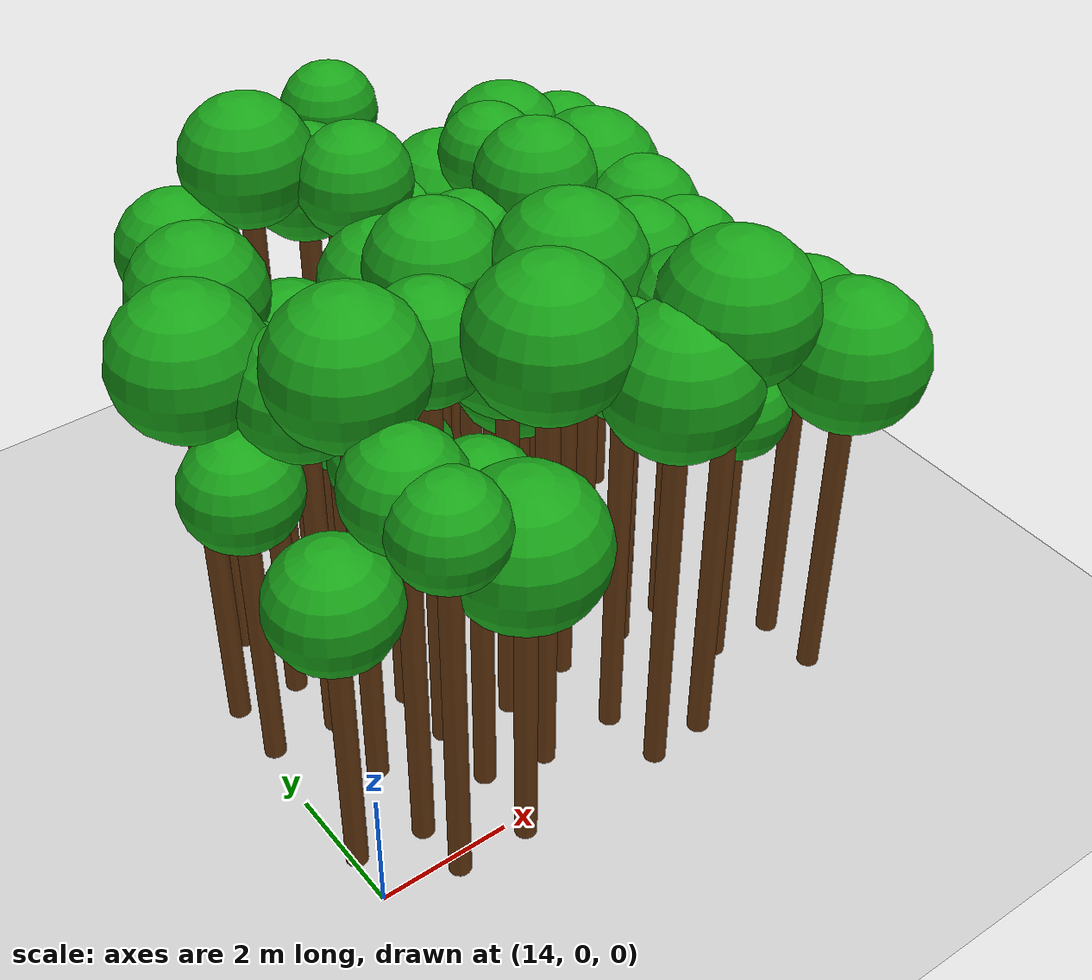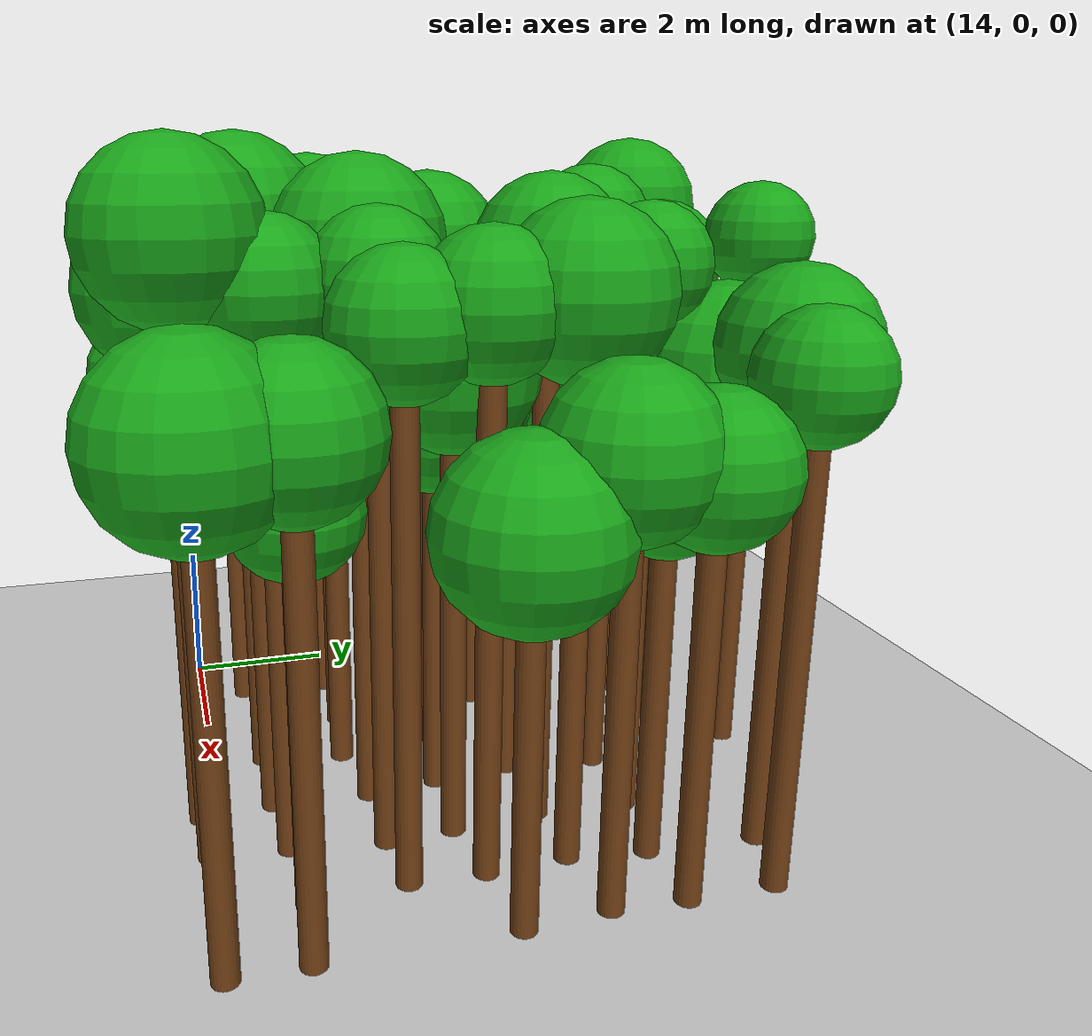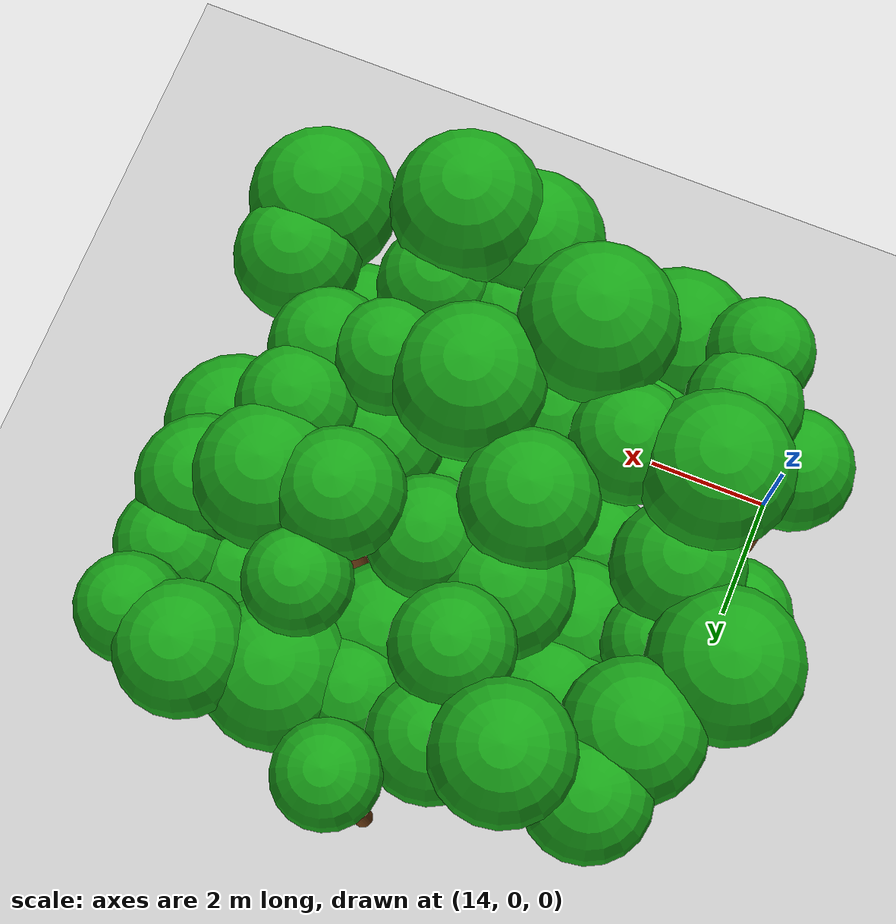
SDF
<sdf version="1.6">
 <world name="forest_world">
  <include><uri>model://sun</uri></include>
  <include><uri>model://ground_plane</uri></include>
  <model name="tree_2205_trunk">
   <static>true</static>
   <pose>14.08 0.78 2.17 0 0 0</pose>
   <link name="link">
    <collision name="collision">
     <geometry><cylinder><radius>0.16</radius><length>4.34</length></cylinder></geometry>
    </collision>
    <visual name="visual">
     <geometry><cylinder><radius>0.16</radius><length>4.34</length></cylinder></geometry>
     <material><ambient>0.35 0.20 0.05 1</ambient><diffuse>0.45 0.25 0.08 1</diffuse></material>
    </visual>
   </link>
  </model>
  <model name="tree_2205_leaf">
   <static>true</static>
   <pose>14.08 0.78 4.87 0 0 0</pose>
   <link name="link">
    <collision name="collision"><geometry><sphere><radius>0.89</radius></sphere></geometry></collision>
    <visual name="visual">
     <geometry><sphere><radius>0.89</radius></sphere></geometry>
     <material><ambient>0.05 0.45 0.05 1</ambient><diffuse>0.10 0.65 0.10 1</diffuse></material>
    </visual>
   </link>
  </model>
  <model name="tree_2207_trunk">
   <static>true</static>
   <pose>14.16 3.11 2.25 0 0 0</pose>
   <link name="link">
    <collision name="collision">
     <geometry><cylinder><radius>0.16</radius><length>4.50</length></cylinder></geometry>
    </collision>
    <visual name="visual">
     <geometry><cylinder><radius>0.16</radius><length>4.50</length></cylinder></geometry>
     <material><ambient>0.35 0.20 0.05 1</ambient><diffuse>0.45 0.25 0.08 1</diffuse></material>
    </visual>
   </link>
  </model>
  <model name="tree_2207_leaf">
   <static>true</static>
   <pose>14.16 3.11 5.00 0 0 0</pose>
   <link name="link">
    <collision name="collision"><geometry><sphere><radius>0.84</radius></sphere></geometry></collision>
    <visual name="visual">
     <geometry><sphere><radius>0.84</radius></sphere></geometry>
     <material><ambient>0.05 0.45 0.05 1</ambient><diffuse>0.10 0.65 0.10 1</diffuse></material>
    </visual>
   </link>
  </model>
  <model name="tree_2208_trunk">
   <static>true</static>
   <pose>14.13 4.09 2.92 0 0 0</pose>
   <link name="link">
    <collision name="collision">
     <geometry><cylinder><radius>0.16</radius><length>5.83</length></cylinder></geometry>
    </collision>
    <visual name="visual">
     <geometry><cylinder><radius>0.16</radius><length>5.83</length></cylinder></geometry>
     <material><ambient>0.35 0.20 0.05 1</ambient><diffuse>0.45 0.25 0.08 1</diffuse></material>
    </visual>
   </link>
  </model>
  <model name="tree_2208_leaf">
   <static>true</static>
   <pose>14.13 4.09 6.48 0 0 0</pose>
   <link name="link">
    <collision name="collision"><geometry><sphere><radius>1.07</radius></sphere></geometry></collision>
    <visual name="visual">
     <geometry><sphere><radius>1.07</radius></sphere></geometry>
     <material><ambient>0.05 0.45 0.05 1</ambient><diffuse>0.10 0.65 0.10 1</diffuse></material>
    </visual>
   </link>
  </model>
  <model name="tree_2259_trunk">
   <static>true</static>
   <pose>15.13 -0.18 2.87 0 0 0</pose>
   <link name="link">
    <collision name="collision">
     <geometry><cylinder><radius>0.16</radius><length>5.75</length></cylinder></geometry>
    </collision>
    <visual name="visual">
     <geometry><cylinder><radius>0.16</radius><length>5.75</length></cylinder></geometry>
     <material><ambient>0.35 0.20 0.05 1</ambient><diffuse>0.45 0.25 0.08 1</diffuse></material>
    </visual>
   </link>
  </model>
  <model name="tree_2259_leaf">
   <static>true</static>
   <pose>15.13 -0.18 6.21 0 0 0</pose>
   <link name="link">
    <collision name="collision"><geometry><sphere><radius>0.77</radius></sphere></geometry></collision>
    <visual name="visual">
     <geometry><sphere><radius>0.77</radius></sphere></geometry>
     <material><ambient>0.05 0.45 0.05 1</ambient><diffuse>0.10 0.65 0.10 1</diffuse></material>
    </visual>
   </link>
  </model>
  <model name="tree_2260_trunk">
   <static>true</static>
   <pose>15.08 0.64 2.89 0 0 0</pose>
   <link name="link">
    <collision name="collision">
     <geometry><cylinder><radius>0.16</radius><length>5.79</length></cylinder></geometry>
    </collision>
    <visual name="visual">
     <geometry><cylinder><radius>0.16</radius><length>5.79</length></cylinder></geometry>
     <material><ambient>0.35 0.20 0.05 1</ambient><diffuse>0.45 0.25 0.08 1</diffuse></material>
    </visual>
   </link>
  </model>
  <model name="tree_2260_leaf">
   <static>true</static>
   <pose>15.08 0.64 6.28 0 0 0</pose>
   <link name="link">
    <collision name="collision"><geometry><sphere><radius>0.82</radius></sphere></geometry></collision>
    <visual name="visual">
     <geometry><sphere><radius>0.82</radius></sphere></geometry>
     <material><ambient>0.05 0.45 0.05 1</ambient><diffuse>0.10 0.65 0.10 1</diffuse></material>
    </visual>
   </link>
  </model>
  <model name="tree_2261_trunk">
   <static>true</static>
   <pose>15.15 1.91 3.31 0 0 0</pose>
   <link name="link">
    <collision name="collision">
     <geometry><cylinder><radius>0.16</radius><length>6.62</length></cylinder></geometry>
    </collision>
    <visual name="visual">
     <geometry><cylinder><radius>0.16</radius><length>6.62</length></cylinder></geometry>
     <material><ambient>0.35 0.20 0.05 1</ambient><diffuse>0.45 0.25 0.08 1</diffuse></material>
    </visual>
   </link>
  </model>
  <model name="tree_2261_leaf">
   <static>true</static>
   <pose>15.15 1.91 7.25 0 0 0</pose>
   <link name="link">
    <collision name="collision"><geometry><sphere><radius>1.05</radius></sphere></geometry></collision>
    <visual name="visual">
     <geometry><sphere><radius>1.05</radius></sphere></geometry>
     <material><ambient>0.05 0.45 0.05 1</ambient><diffuse>0.10 0.65 0.10 1</diffuse></material>
    </visual>
   </link>
  </model>
  <model name="tree_2262_trunk">
   <static>true</static>
   <pose>15.13 3.03 2.83 0 0 0</pose>
   <link name="link">
    <collision name="collision">
     <geometry><cylinder><radius>0.16</radius><length>5.65</length></cylinder></geometry>
    </collision>
    <visual name="visual">
     <geometry><cylinder><radius>0.16</radius><length>5.65</length></cylinder></geometry>
     <material><ambient>0.35 0.20 0.05 1</ambient><diffuse>0.45 0.25 0.08 1</diffuse></material>
    </visual>
   </link>
  </model>
  <model name="tree_2262_leaf">
   <static>true</static>
   <pose>15.13 3.03 6.21 0 0 0</pose>
   <link name="link">
    <collision name="collision"><geometry><sphere><radius>0.93</radius></sphere></geometry></collision>
    <visual name="visual">
     <geometry><sphere><radius>0.93</radius></sphere></geometry>
     <material><ambient>0.05 0.45 0.05 1</ambient><diffuse>0.10 0.65 0.10 1</diffuse></material>
    </visual>
   </link>
  </model>
  <model name="tree_2263_trunk">
   <static>true</static>
   <pose>15.08 4.05 2.71 0 0 0</pose>
   <link name="link">
    <collision name="collision">
     <geometry><cylinder><radius>0.16</radius><length>5.42</length></cylinder></geometry>
    </collision>
    <visual name="visual">
     <geometry><cylinder><radius>0.16</radius><length>5.42</length></cylinder></geometry>
     <material><ambient>0.35 0.20 0.05 1</ambient><diffuse>0.45 0.25 0.08 1</diffuse></material>
    </visual>
   </link>
  </model>
  <model name="tree_2263_leaf">
   <static>true</static>
   <pose>15.08 4.05 5.85 0 0 0</pose>
   <link name="link">
    <collision name="collision"><geometry><sphere><radius>0.71</radius></sphere></geometry></collision>
    <visual name="visual">
     <geometry><sphere><radius>0.71</radius></sphere></geometry>
     <material><ambient>0.05 0.45 0.05 1</ambient><diffuse>0.10 0.65 0.10 1</diffuse></material>
    </visual>
   </link>
  </model>
  <model name="tree_2264_trunk">
   <static>true</static>
   <pose>14.93 5.32 2.95 0 0 0</pose>
   <link name="link">
    <collision name="collision">
     <geometry><cylinder><radius>0.16</radius><length>5.91</length></cylinder></geometry>
    </collision>
    <visual name="visual">
     <geometry><cylinder><radius>0.16</radius><length>5.91</length></cylinder></geometry>
     <material><ambient>0.35 0.20 0.05 1</ambient><diffuse>0.45 0.25 0.08 1</diffuse></material>
    </visual>
   </link>
  </model>
  <model name="tree_2264_leaf">
   <static>true</static>
   <pose>14.93 5.32 6.49 0 0 0</pose>
   <link name="link">
    <collision name="collision"><geometry><sphere><radius>0.98</radius></sphere></geometry></collision>
    <visual name="visual">
     <geometry><sphere><radius>0.98</radius></sphere></geometry>
     <material><ambient>0.05 0.45 0.05 1</ambient><diffuse>0.10 0.65 0.10 1</diffuse></material>
    </visual>
   </link>
  </model>
  <model name="tree_2265_trunk">
   <static>true</static>
   <pose>15.19 6.32 3.02 0 0 0</pose>
   <link name="link">
    <collision name="collision">
     <geometry><cylinder><radius>0.16</radius><length>6.03</length></cylinder></geometry>
    </collision>
    <visual name="visual">
     <geometry><cylinder><radius>0.16</radius><length>6.03</length></cylinder></geometry>
     <material><ambient>0.35 0.20 0.05 1</ambient><diffuse>0.45 0.25 0.08 1</diffuse></material>
    </visual>
   </link>
  </model>
  <model name="tree_2265_leaf">
   <static>true</static>
   <pose>15.19 6.32 6.55 0 0 0</pose>
   <link name="link">
    <collision name="collision"><geometry><sphere><radius>0.87</radius></sphere></geometry></collision>
    <visual name="visual">
     <geometry><sphere><radius>0.87</radius></sphere></geometry>
     <material><ambient>0.05 0.45 0.05 1</ambient><diffuse>0.10 0.65 0.10 1</diffuse></material>
    </visual>
   </link>
  </model>
  <model name="tree_2314_trunk">
   <static>true</static>
   <pose>16.22 -0.21 2.35 0 0 0</pose>
   <link name="link">
    <collision name="collision">
     <geometry><cylinder><radius>0.16</radius><length>4.70</length></cylinder></geometry>
    </collision>
    <visual name="visual">
     <geometry><cylinder><radius>0.16</radius><length>4.70</length></cylinder></geometry>
     <material><ambient>0.35 0.20 0.05 1</ambient><diffuse>0.45 0.25 0.08 1</diffuse></material>
    </visual>
   </link>
  </model>
  <model name="tree_2314_leaf">
   <static>true</static>
   <pose>16.22 -0.21 5.36 0 0 0</pose>
   <link name="link">
    <collision name="collision"><geometry><sphere><radius>1.09</radius></sphere></geometry></collision>
    <visual name="visual">
     <geometry><sphere><radius>1.09</radius></sphere></geometry>
     <material><ambient>0.05 0.45 0.05 1</ambient><diffuse>0.10 0.65 0.10 1</diffuse></material>
    </visual>
   </link>
  </model>
  <model name="tree_2315_trunk">
   <static>true</static>
   <pose>16.33 0.91 2.41 0 0 0</pose>
   <link name="link">
    <collision name="collision">
     <geometry><cylinder><radius>0.16</radius><length>4.82</length></cylinder></geometry>
    </collision>
    <visual name="visual">
     <geometry><cylinder><radius>0.16</radius><length>4.82</length></cylinder></geometry>
     <material><ambient>0.35 0.20 0.05 1</ambient><diffuse>0.45 0.25 0.08 1</diffuse></material>
    </visual>
   </link>
  </model>
  <model name="tree_2315_leaf">
   <static>true</static>
   <pose>16.33 0.91 5.30 0 0 0</pose>
   <link name="link">
    <collision name="collision"><geometry><sphere><radius>0.80</radius></sphere></geometry></collision>
    <visual name="visual">
     <geometry><sphere><radius>0.80</radius></sphere></geometry>
     <material><ambient>0.05 0.45 0.05 1</ambient><diffuse>0.10 0.65 0.10 1</diffuse></material>
    </visual>
   </link>
  </model>
  <model name="tree_2316_trunk">
   <static>true</static>
   <pose>16.31 1.93 3.30 0 0 0</pose>
   <link name="link">
    <collision name="collision">
     <geometry><cylinder><radius>0.16</radius><length>6.61</length></cylinder></geometry>
    </collision>
    <visual name="visual">
     <geometry><cylinder><radius>0.16</radius><length>6.61</length></cylinder></geometry>
     <material><ambient>0.35 0.20 0.05 1</ambient><diffuse>0.45 0.25 0.08 1</diffuse></material>
    </visual>
   </link>
  </model>
  <model name="tree_2316_leaf">
   <static>true</static>
   <pose>16.31 1.93 7.10 0 0 0</pose>
   <link name="link">
    <collision name="collision"><geometry><sphere><radius>0.83</radius></sphere></geometry></collision>
    <visual name="visual">
     <geometry><sphere><radius>0.83</radius></sphere></geometry>
     <material><ambient>0.05 0.45 0.05 1</ambient><diffuse>0.10 0.65 0.10 1</diffuse></material>
    </visual>
   </link>
  </model>
  <model name="tree_2317_trunk">
   <static>true</static>
   <pose>16.27 2.86 2.07 0 0 0</pose>
   <link name="link">
    <collision name="collision">
     <geometry><cylinder><radius>0.16</radius><length>4.14</length></cylinder></geometry>
    </collision>
    <visual name="visual">
     <geometry><cylinder><radius>0.16</radius><length>4.14</length></cylinder></geometry>
     <material><ambient>0.35 0.20 0.05 1</ambient><diffuse>0.45 0.25 0.08 1</diffuse></material>
    </visual>
   </link>
  </model>
  <model name="tree_2317_leaf">
   <static>true</static>
   <pose>16.27 2.86 4.67 0 0 0</pose>
   <link name="link">
    <collision name="collision"><geometry><sphere><radius>0.88</radius></sphere></geometry></collision>
    <visual name="visual">
     <geometry><sphere><radius>0.88</radius></sphere></geometry>
     <material><ambient>0.05 0.45 0.05 1</ambient><diffuse>0.10 0.65 0.10 1</diffuse></material>
    </visual>
   </link>
  </model>
  <model name="tree_2318_trunk">
   <static>true</static>
   <pose>16.16 4.08 2.19 0 0 0</pose>
   <link name="link">
    <collision name="collision">
     <geometry><cylinder><radius>0.16</radius><length>4.38</length></cylinder></geometry>
    </collision>
    <visual name="visual">
     <geometry><cylinder><radius>0.16</radius><length>4.38</length></cylinder></geometry>
     <material><ambient>0.35 0.20 0.05 1</ambient><diffuse>0.45 0.25 0.08 1</diffuse></material>
    </visual>
   </link>
  </model>
  <model name="tree_2318_leaf">
   <static>true</static>
   <pose>16.16 4.08 5.00 0 0 0</pose>
   <link name="link">
    <collision name="collision"><geometry><sphere><radius>1.02</radius></sphere></geometry></collision>
    <visual name="visual">
     <geometry><sphere><radius>1.02</radius></sphere></geometry>
     <material><ambient>0.05 0.45 0.05 1</ambient><diffuse>0.10 0.65 0.10 1</diffuse></material>
    </visual>
   </link>
  </model>
  <model name="tree_2319_trunk">
   <static>true</static>
   <pose>16.15 5.15 2.28 0 0 0</pose>
   <link name="link">
    <collision name="collision">
     <geometry><cylinder><radius>0.16</radius><length>4.56</length></cylinder></geometry>
    </collision>
    <visual name="visual">
     <geometry><cylinder><radius>0.16</radius><length>4.56</length></cylinder></geometry>
     <material><ambient>0.35 0.20 0.05 1</ambient><diffuse>0.45 0.25 0.08 1</diffuse></material>
    </visual>
   </link>
  </model>
  <model name="tree_2319_leaf">
   <static>true</static>
   <pose>16.15 5.15 5.16 0 0 0</pose>
   <link name="link">
    <collision name="collision"><geometry><sphere><radius>0.99</radius></sphere></geometry></collision>
    <visual name="visual">
     <geometry><sphere><radius>0.99</radius></sphere></geometry>
     <material><ambient>0.05 0.45 0.05 1</ambient><diffuse>0.10 0.65 0.10 1</diffuse></material>
    </visual>
   </link>
  </model>
  <model name="tree_2320_trunk">
   <static>true</static>
   <pose>16.35 6.31 3.50 0 0 0</pose>
   <link name="link">
    <collision name="collision">
     <geometry><cylinder><radius>0.16</radius><length>6.99</length></cylinder></geometry>
    </collision>
    <visual name="visual">
     <geometry><cylinder><radius>0.16</radius><length>6.99</length></cylinder></geometry>
     <material><ambient>0.35 0.20 0.05 1</ambient><diffuse>0.45 0.25 0.08 1</diffuse></material>
    </visual>
   </link>
  </model>
  <model name="tree_2320_leaf">
   <static>true</static>
   <pose>16.35 6.31 7.55 0 0 0</pose>
   <link name="link">
    <collision name="collision"><geometry><sphere><radius>0.94</radius></sphere></geometry></collision>
    <visual name="visual">
     <geometry><sphere><radius>0.94</radius></sphere></geometry>
     <material><ambient>0.05 0.45 0.05 1</ambient><diffuse>0.10 0.65 0.10 1</diffuse></material>
    </visual>
   </link>
  </model>
  <model name="tree_2370_trunk">
   <static>true</static>
   <pose>17.24 0.71 3.42 0 0 0</pose>
   <link name="link">
    <collision name="collision">
     <geometry><cylinder><radius>0.16</radius><length>6.85</length></cylinder></geometry>
    </collision>
    <visual name="visual">
     <geometry><cylinder><radius>0.16</radius><length>6.85</length></cylinder></geometry>
     <material><ambient>0.35 0.20 0.05 1</ambient><diffuse>0.45 0.25 0.08 1</diffuse></material>
    </visual>
   </link>
  </model>
  <model name="tree_2370_leaf">
   <static>true</static>
   <pose>17.24 0.71 7.49 0 0 0</pose>
   <link name="link">
    <collision name="collision"><geometry><sphere><radius>1.08</radius></sphere></geometry></collision>
    <visual name="visual">
     <geometry><sphere><radius>1.08</radius></sphere></geometry>
     <material><ambient>0.05 0.45 0.05 1</ambient><diffuse>0.10 0.65 0.10 1</diffuse></material>
    </visual>
   </link>
  </model>
  <model name="tree_2371_trunk">
   <static>true</static>
   <pose>17.41 1.80 3.02 0 0 0</pose>
   <link name="link">
    <collision name="collision">
     <geometry><cylinder><radius>0.16</radius><length>6.04</length></cylinder></geometry>
    </collision>
    <visual name="visual">
     <geometry><cylinder><radius>0.16</radius><length>6.04</length></cylinder></geometry>
     <material><ambient>0.35 0.20 0.05 1</ambient><diffuse>0.45 0.25 0.08 1</diffuse></material>
    </visual>
   </link>
  </model>
  <model name="tree_2371_leaf">
   <static>true</static>
   <pose>17.41 1.80 6.57 0 0 0</pose>
   <link name="link">
    <collision name="collision"><geometry><sphere><radius>0.88</radius></sphere></geometry></collision>
    <visual name="visual">
     <geometry><sphere><radius>0.88</radius></sphere></geometry>
     <material><ambient>0.05 0.45 0.05 1</ambient><diffuse>0.10 0.65 0.10 1</diffuse></material>
    </visual>
   </link>
  </model>
  <model name="tree_2372_trunk">
   <static>true</static>
   <pose>17.24 3.14 3.29 0 0 0</pose>
   <link name="link">
    <collision name="collision">
     <geometry><cylinder><radius>0.16</radius><length>6.59</length></cylinder></geometry>
    </collision>
    <visual name="visual">
     <geometry><cylinder><radius>0.16</radius><length>6.59</length></cylinder></geometry>
     <material><ambient>0.35 0.20 0.05 1</ambient><diffuse>0.45 0.25 0.08 1</diffuse></material>
    </visual>
   </link>
  </model>
  <model name="tree_2372_leaf">
   <static>true</static>
   <pose>17.24 3.14 7.15 0 0 0</pose>
   <link name="link">
    <collision name="collision"><geometry><sphere><radius>0.94</radius></sphere></geometry></collision>
    <visual name="visual">
     <geometry><sphere><radius>0.94</radius></sphere></geometry>
     <material><ambient>0.05 0.45 0.05 1</ambient><diffuse>0.10 0.65 0.10 1</diffuse></material>
    </visual>
   </link>
  </model>
  <model name="tree_2373_trunk">
   <static>true</static>
   <pose>17.17 4.20 2.88 0 0 0</pose>
   <link name="link">
    <collision name="collision">
     <geometry><cylinder><radius>0.16</radius><length>5.77</length></cylinder></geometry>
    </collision>
    <visual name="visual">
     <geometry><cylinder><radius>0.16</radius><length>5.77</length></cylinder></geometry>
     <material><ambient>0.35 0.20 0.05 1</ambient><diffuse>0.45 0.25 0.08 1</diffuse></material>
    </visual>
   </link>
  </model>
  <model name="tree_2373_leaf">
   <static>true</static>
   <pose>17.17 4.20 6.35 0 0 0</pose>
   <link name="link">
    <collision name="collision"><geometry><sphere><radius>0.96</radius></sphere></geometry></collision>
    <visual name="visual">
     <geometry><sphere><radius>0.96</radius></sphere></geometry>
     <material><ambient>0.05 0.45 0.05 1</ambient><diffuse>0.10 0.65 0.10 1</diffuse></material>
    </visual>
   </link>
  </model>
  <model name="tree_2374_trunk">
   <static>true</static>
   <pose>17.42 5.30 3.42 0 0 0</pose>
   <link name="link">
    <collision name="collision">
     <geometry><cylinder><radius>0.16</radius><length>6.85</length></cylinder></geometry>
    </collision>
    <visual name="visual">
     <geometry><cylinder><radius>0.16</radius><length>6.85</length></cylinder></geometry>
     <material><ambient>0.35 0.20 0.05 1</ambient><diffuse>0.45 0.25 0.08 1</diffuse></material>
    </visual>
   </link>
  </model>
  <model name="tree_2374_leaf">
   <static>true</static>
   <pose>17.42 5.30 7.34 0 0 0</pose>
   <link name="link">
    <collision name="collision"><geometry><sphere><radius>0.82</radius></sphere></geometry></collision>
    <visual name="visual">
     <geometry><sphere><radius>0.82</radius></sphere></geometry>
     <material><ambient>0.05 0.45 0.05 1</ambient><diffuse>0.10 0.65 0.10 1</diffuse></material>
    </visual>
   </link>
  </model>
  <model name="tree_2375_trunk">
   <static>true</static>
   <pose>17.27 6.41 3.17 0 0 0</pose>
   <link name="link">
    <collision name="collision">
     <geometry><cylinder><radius>0.16</radius><length>6.33</length></cylinder></geometry>
    </collision>
    <visual name="visual">
     <geometry><cylinder><radius>0.16</radius><length>6.33</length></cylinder></geometry>
     <material><ambient>0.35 0.20 0.05 1</ambient><diffuse>0.45 0.25 0.08 1</diffuse></material>
    </visual>
   </link>
  </model>
  <model name="tree_2375_leaf">
   <static>true</static>
   <pose>17.27 6.41 6.84 0 0 0</pose>
   <link name="link">
    <collision name="collision"><geometry><sphere><radius>0.85</radius></sphere></geometry></collision>
    <visual name="visual">
     <geometry><sphere><radius>0.85</radius></sphere></geometry>
     <material><ambient>0.05 0.45 0.05 1</ambient><diffuse>0.10 0.65 0.10 1</diffuse></material>
    </visual>
   </link>
  </model>
  <model name="tree_2424_trunk">
   <static>true</static>
   <pose>18.53 -0.23 3.11 0 0 0</pose>
   <link name="link">
    <collision name="collision">
     <geometry><cylinder><radius>0.16</radius><length>6.22</length></cylinder></geometry>
    </collision>
    <visual name="visual">
     <geometry><cylinder><radius>0.16</radius><length>6.22</length></cylinder></geometry>
     <material><ambient>0.35 0.20 0.05 1</ambient><diffuse>0.45 0.25 0.08 1</diffuse></material>
    </visual>
   </link>
  </model>
  <model name="tree_2424_leaf">
   <static>true</static>
   <pose>18.53 -0.23 6.84 0 0 0</pose>
   <link name="link">
    <collision name="collision"><geometry><sphere><radius>1.04</radius></sphere></geometry></collision>
    <visual name="visual">
     <geometry><sphere><radius>1.04</radius></sphere></geometry>
     <material><ambient>0.05 0.45 0.05 1</ambient><diffuse>0.10 0.65 0.10 1</diffuse></material>
    </visual>
   </link>
  </model>
  <model name="tree_2425_trunk">
   <static>true</static>
   <pose>18.45 0.71 3.07 0 0 0</pose>
   <link name="link">
    <collision name="collision">
     <geometry><cylinder><radius>0.16</radius><length>6.14</length></cylinder></geometry>
    </collision>
    <visual name="visual">
     <geometry><cylinder><radius>0.16</radius><length>6.14</length></cylinder></geometry>
     <material><ambient>0.35 0.20 0.05 1</ambient><diffuse>0.45 0.25 0.08 1</diffuse></material>
    </visual>
   </link>
  </model>
  <model name="tree_2425_leaf">
   <static>true</static>
   <pose>18.45 0.71 6.62 0 0 0</pose>
   <link name="link">
    <collision name="collision"><geometry><sphere><radius>0.80</radius></sphere></geometry></collision>
    <visual name="visual">
     <geometry><sphere><radius>0.80</radius></sphere></geometry>
     <material><ambient>0.05 0.45 0.05 1</ambient><diffuse>0.10 0.65 0.10 1</diffuse></material>
    </visual>
   </link>
  </model>
  <model name="tree_2426_trunk">
   <static>true</static>
   <pose>18.52 1.98 3.32 0 0 0</pose>
   <link name="link">
    <collision name="collision">
     <geometry><cylinder><radius>0.16</radius><length>6.64</length></cylinder></geometry>
    </collision>
    <visual name="visual">
     <geometry><cylinder><radius>0.16</radius><length>6.64</length></cylinder></geometry>
     <material><ambient>0.35 0.20 0.05 1</ambient><diffuse>0.45 0.25 0.08 1</diffuse></material>
    </visual>
   </link>
  </model>
  <model name="tree_2426_leaf">
   <static>true</static>
   <pose>18.52 1.98 7.27 0 0 0</pose>
   <link name="link">
    <collision name="collision"><geometry><sphere><radius>1.05</radius></sphere></geometry></collision>
    <visual name="visual">
     <geometry><sphere><radius>1.05</radius></sphere></geometry>
     <material><ambient>0.05 0.45 0.05 1</ambient><diffuse>0.10 0.65 0.10 1</diffuse></material>
    </visual>
   </link>
  </model>
  <model name="tree_2427_trunk">
   <static>true</static>
   <pose>18.42 2.92 2.28 0 0 0</pose>
   <link name="link">
    <collision name="collision">
     <geometry><cylinder><radius>0.16</radius><length>4.56</length></cylinder></geometry>
    </collision>
    <visual name="visual">
     <geometry><cylinder><radius>0.16</radius><length>4.56</length></cylinder></geometry>
     <material><ambient>0.35 0.20 0.05 1</ambient><diffuse>0.45 0.25 0.08 1</diffuse></material>
    </visual>
   </link>
  </model>
  <model name="tree_2427_leaf">
   <static>true</static>
   <pose>18.42 2.92 5.14 0 0 0</pose>
   <link name="link">
    <collision name="collision"><geometry><sphere><radius>0.96</radius></sphere></geometry></collision>
    <visual name="visual">
     <geometry><sphere><radius>0.96</radius></sphere></geometry>
     <material><ambient>0.05 0.45 0.05 1</ambient><diffuse>0.10 0.65 0.10 1</diffuse></material>
    </visual>
   </link>
  </model>
  <model name="tree_2428_trunk">
   <static>true</static>
   <pose>18.32 3.96 3.03 0 0 0</pose>
   <link name="link">
    <collision name="collision">
     <geometry><cylinder><radius>0.16</radius><length>6.07</length></cylinder></geometry>
    </collision>
    <visual name="visual">
     <geometry><cylinder><radius>0.16</radius><length>6.07</length></cylinder></geometry>
     <material><ambient>0.35 0.20 0.05 1</ambient><diffuse>0.45 0.25 0.08 1</diffuse></material>
    </visual>
   </link>
  </model>
  <model name="tree_2428_leaf">
   <static>true</static>
   <pose>18.32 3.96 6.57 0 0 0</pose>
   <link name="link">
    <collision name="collision"><geometry><sphere><radius>0.84</radius></sphere></geometry></collision>
    <visual name="visual">
     <geometry><sphere><radius>0.84</radius></sphere></geometry>
     <material><ambient>0.05 0.45 0.05 1</ambient><diffuse>0.10 0.65 0.10 1</diffuse></material>
    </visual>
   </link>
  </model>
  <model name="tree_2429_trunk">
   <static>true</static>
   <pose>18.45 5.20 2.40 0 0 0</pose>
   <link name="link">
    <collision name="collision">
     <geometry><cylinder><radius>0.16</radius><length>4.80</length></cylinder></geometry>
    </collision>
    <visual name="visual">
     <geometry><cylinder><radius>0.16</radius><length>4.80</length></cylinder></geometry>
     <material><ambient>0.35 0.20 0.05 1</ambient><diffuse>0.45 0.25 0.08 1</diffuse></material>
    </visual>
   </link>
  </model>
  <model name="tree_2429_leaf">
   <static>true</static>
   <pose>18.45 5.20 5.41 0 0 0</pose>
   <link name="link">
    <collision name="collision"><geometry><sphere><radius>1.02</radius></sphere></geometry></collision>
    <visual name="visual">
     <geometry><sphere><radius>1.02</radius></sphere></geometry>
     <material><ambient>0.05 0.45 0.05 1</ambient><diffuse>0.10 0.65 0.10 1</diffuse></material>
    </visual>
   </link>
  </model>
  <model name="tree_2430_trunk">
   <static>true</static>
   <pose>18.53 6.12 2.63 0 0 0</pose>
   <link name="link">
    <collision name="collision">
     <geometry><cylinder><radius>0.16</radius><length>5.27</length></cylinder></geometry>
    </collision>
    <visual name="visual">
     <geometry><cylinder><radius>0.16</radius><length>5.27</length></cylinder></geometry>
     <material><ambient>0.35 0.20 0.05 1</ambient><diffuse>0.45 0.25 0.08 1</diffuse></material>
    </visual>
   </link>
  </model>
  <model name="tree_2430_leaf">
   <static>true</static>
   <pose>18.53 6.12 5.76 0 0 0</pose>
   <link name="link">
    <collision name="collision"><geometry><sphere><radius>0.82</radius></sphere></geometry></collision>
    <visual name="visual">
     <geometry><sphere><radius>0.82</radius></sphere></geometry>
     <material><ambient>0.05 0.45 0.05 1</ambient><diffuse>0.10 0.65 0.10 1</diffuse></material>
    </visual>
   </link>
  </model>
  <model name="tree_2431_trunk">
   <static>true</static>
   <pose>18.27 7.33 3.41 0 0 0</pose>
   <link name="link">
    <collision name="collision">
     <geometry><cylinder><radius>0.16</radius><length>6.81</length></cylinder></geometry>
    </collision>
    <visual name="visual">
     <geometry><cylinder><radius>0.16</radius><length>6.81</length></cylinder></geometry>
     <material><ambient>0.35 0.20 0.05 1</ambient><diffuse>0.45 0.25 0.08 1</diffuse></material>
    </visual>
   </link>
  </model>
  <model name="tree_2431_leaf">
   <static>true</static>
   <pose>18.27 7.33 7.24 0 0 0</pose>
   <link name="link">
    <collision name="collision"><geometry><sphere><radius>0.71</radius></sphere></geometry></collision>
    <visual name="visual">
     <geometry><sphere><radius>0.71</radius></sphere></geometry>
     <material><ambient>0.05 0.45 0.05 1</ambient><diffuse>0.10 0.65 0.10 1</diffuse></material>
    </visual>
   </link>
  </model>
  <model name="tree_2479_trunk">
   <static>true</static>
   <pose>19.41 -0.17 3.44 0 0 0</pose>
   <link name="link">
    <collision name="collision">
     <geometry><cylinder><radius>0.16</radius><length>6.87</length></cylinder></geometry>
    </collision>
    <visual name="visual">
     <geometry><cylinder><radius>0.16</radius><length>6.87</length></cylinder></geometry>
     <material><ambient>0.35 0.20 0.05 1</ambient><diffuse>0.45 0.25 0.08 1</diffuse></material>
    </visual>
   </link>
  </model>
  <model name="tree_2479_leaf">
   <static>true</static>
   <pose>19.41 -0.17 7.49 0 0 0</pose>
   <link name="link">
    <collision name="collision"><geometry><sphere><radius>1.04</radius></sphere></geometry></collision>
    <visual name="visual">
     <geometry><sphere><radius>1.04</radius></sphere></geometry>
     <material><ambient>0.05 0.45 0.05 1</ambient><diffuse>0.10 0.65 0.10 1</diffuse></material>
    </visual>
   </link>
  </model>
  <model name="tree_2480_trunk">
   <static>true</static>
   <pose>19.48 0.79 3.21 0 0 0</pose>
   <link name="link">
    <collision name="collision">
     <geometry><cylinder><radius>0.16</radius><length>6.43</length></cylinder></geometry>
    </collision>
    <visual name="visual">
     <geometry><cylinder><radius>0.16</radius><length>6.43</length></cylinder></geometry>
     <material><ambient>0.35 0.20 0.05 1</ambient><diffuse>0.45 0.25 0.08 1</diffuse></material>
    </visual>
   </link>
  </model>
  <model name="tree_2480_leaf">
   <static>true</static>
   <pose>19.48 0.79 6.91 0 0 0</pose>
   <link name="link">
    <collision name="collision"><geometry><sphere><radius>0.81</radius></sphere></geometry></collision>
    <visual name="visual">
     <geometry><sphere><radius>0.81</radius></sphere></geometry>
     <material><ambient>0.05 0.45 0.05 1</ambient><diffuse>0.10 0.65 0.10 1</diffuse></material>
    </visual>
   </link>
  </model>
  <model name="tree_2481_trunk">
   <static>true</static>
   <pose>19.65 1.98 3.26 0 0 0</pose>
   <link name="link">
    <collision name="collision">
     <geometry><cylinder><radius>0.16</radius><length>6.52</length></cylinder></geometry>
    </collision>
    <visual name="visual">
     <geometry><cylinder><radius>0.16</radius><length>6.52</length></cylinder></geometry>
     <material><ambient>0.35 0.20 0.05 1</ambient><diffuse>0.45 0.25 0.08 1</diffuse></material>
    </visual>
   </link>
  </model>
  <model name="tree_2481_leaf">
   <static>true</static>
   <pose>19.65 1.98 6.99 0 0 0</pose>
   <link name="link">
    <collision name="collision"><geometry><sphere><radius>0.80</radius></sphere></geometry></collision>
    <visual name="visual">
     <geometry><sphere><radius>0.80</radius></sphere></geometry>
     <material><ambient>0.05 0.45 0.05 1</ambient><diffuse>0.10 0.65 0.10 1</diffuse></material>
    </visual>
   </link>
  </model>
  <model name="tree_2482_trunk">
   <static>true</static>
   <pose>19.60 2.85 2.69 0 0 0</pose>
   <link name="link">
    <collision name="collision">
     <geometry><cylinder><radius>0.16</radius><length>5.38</length></cylinder></geometry>
    </collision>
    <visual name="visual">
     <geometry><cylinder><radius>0.16</radius><length>5.38</length></cylinder></geometry>
     <material><ambient>0.35 0.20 0.05 1</ambient><diffuse>0.45 0.25 0.08 1</diffuse></material>
    </visual>
   </link>
  </model>
  <model name="tree_2482_leaf">
   <static>true</static>
   <pose>19.60 2.85 5.99 0 0 0</pose>
   <link name="link">
    <collision name="collision"><geometry><sphere><radius>1.01</radius></sphere></geometry></collision>
    <visual name="visual">
     <geometry><sphere><radius>1.01</radius></sphere></geometry>
     <material><ambient>0.05 0.45 0.05 1</ambient><diffuse>0.10 0.65 0.10 1</diffuse></material>
    </visual>
   </link>
  </model>
  <model name="tree_2483_trunk">
   <static>true</static>
   <pose>19.51 3.99 3.35 0 0 0</pose>
   <link name="link">
    <collision name="collision">
     <geometry><cylinder><radius>0.16</radius><length>6.70</length></cylinder></geometry>
    </collision>
    <visual name="visual">
     <geometry><cylinder><radius>0.16</radius><length>6.70</length></cylinder></geometry>
     <material><ambient>0.35 0.20 0.05 1</ambient><diffuse>0.45 0.25 0.08 1</diffuse></material>
    </visual>
   </link>
  </model>
  <model name="tree_2483_leaf">
   <static>true</static>
   <pose>19.51 3.99 7.23 0 0 0</pose>
   <link name="link">
    <collision name="collision"><geometry><sphere><radius>0.88</radius></sphere></geometry></collision>
    <visual name="visual">
     <geometry><sphere><radius>0.88</radius></sphere></geometry>
     <material><ambient>0.05 0.45 0.05 1</ambient><diffuse>0.10 0.65 0.10 1</diffuse></material>
    </visual>
   </link>
  </model>
  <model name="tree_2484_trunk">
   <static>true</static>
   <pose>19.59 5.20 3.31 0 0 0</pose>
   <link name="link">
    <collision name="collision">
     <geometry><cylinder><radius>0.16</radius><length>6.62</length></cylinder></geometry>
    </collision>
    <visual name="visual">
     <geometry><cylinder><radius>0.16</radius><length>6.62</length></cylinder></geometry>
     <material><ambient>0.35 0.20 0.05 1</ambient><diffuse>0.45 0.25 0.08 1</diffuse></material>
    </visual>
   </link>
  </model>
  <model name="tree_2484_leaf">
   <static>true</static>
   <pose>19.59 5.20 7.06 0 0 0</pose>
   <link name="link">
    <collision name="collision"><geometry><sphere><radius>0.73</radius></sphere></geometry></collision>
    <visual name="visual">
     <geometry><sphere><radius>0.73</radius></sphere></geometry>
     <material><ambient>0.05 0.45 0.05 1</ambient><diffuse>0.10 0.65 0.10 1</diffuse></material>
    </visual>
   </link>
  </model>
  <model name="tree_2485_trunk">
   <static>true</static>
   <pose>19.55 6.24 2.57 0 0 0</pose>
   <link name="link">
    <collision name="collision">
     <geometry><cylinder><radius>0.16</radius><length>5.15</length></cylinder></geometry>
    </collision>
    <visual name="visual">
     <geometry><cylinder><radius>0.16</radius><length>5.15</length></cylinder></geometry>
     <material><ambient>0.35 0.20 0.05 1</ambient><diffuse>0.45 0.25 0.08 1</diffuse></material>
    </visual>
   </link>
  </model>
  <model name="tree_2485_leaf">
   <static>true</static>
   <pose>19.55 6.24 5.79 0 0 0</pose>
   <link name="link">
    <collision name="collision"><geometry><sphere><radius>1.07</radius></sphere></geometry></collision>
    <visual name="visual">
     <geometry><sphere><radius>1.07</radius></sphere></geometry>
     <material><ambient>0.05 0.45 0.05 1</ambient><diffuse>0.10 0.65 0.10 1</diffuse></material>
    </visual>
   </link>
  </model>
  <model name="tree_2535_trunk">
   <static>true</static>
   <pose>20.62 0.86 2.15 0 0 0</pose>
   <link name="link">
    <collision name="collision">
     <geometry><cylinder><radius>0.16</radius><length>4.30</length></cylinder></geometry>
    </collision>
    <visual name="visual">
     <geometry><cylinder><radius>0.16</radius><length>4.30</length></cylinder></geometry>
     <material><ambient>0.35 0.20 0.05 1</ambient><diffuse>0.45 0.25 0.08 1</diffuse></material>
    </visual>
   </link>
  </model>
  <model name="tree_2535_leaf">
   <static>true</static>
   <pose>20.62 0.86 4.76 0 0 0</pose>
   <link name="link">
    <collision name="collision"><geometry><sphere><radius>0.76</radius></sphere></geometry></collision>
    <visual name="visual">
     <geometry><sphere><radius>0.76</radius></sphere></geometry>
     <material><ambient>0.05 0.45 0.05 1</ambient><diffuse>0.10 0.65 0.10 1</diffuse></material>
    </visual>
   </link>
  </model>
  <model name="tree_2536_trunk">
   <static>true</static>
   <pose>20.52 2.06 3.05 0 0 0</pose>
   <link name="link">
    <collision name="collision">
     <geometry><cylinder><radius>0.16</radius><length>6.11</length></cylinder></geometry>
    </collision>
    <visual name="visual">
     <geometry><cylinder><radius>0.16</radius><length>6.11</length></cylinder></geometry>
     <material><ambient>0.35 0.20 0.05 1</ambient><diffuse>0.45 0.25 0.08 1</diffuse></material>
    </visual>
   </link>
  </model>
  <model name="tree_2536_leaf">
   <static>true</static>
   <pose>20.52 2.06 6.61 0 0 0</pose>
   <link name="link">
    <collision name="collision"><geometry><sphere><radius>0.84</radius></sphere></geometry></collision>
    <visual name="visual">
     <geometry><sphere><radius>0.84</radius></sphere></geometry>
     <material><ambient>0.05 0.45 0.05 1</ambient><diffuse>0.10 0.65 0.10 1</diffuse></material>
    </visual>
   </link>
  </model>
  <model name="tree_2537_trunk">
   <static>true</static>
   <pose>20.56 3.00 3.14 0 0 0</pose>
   <link name="link">
    <collision name="collision">
     <geometry><cylinder><radius>0.16</radius><length>6.29</length></cylinder></geometry>
    </collision>
    <visual name="visual">
     <geometry><cylinder><radius>0.16</radius><length>6.29</length></cylinder></geometry>
     <material><ambient>0.35 0.20 0.05 1</ambient><diffuse>0.45 0.25 0.08 1</diffuse></material>
    </visual>
   </link>
  </model>
  <model name="tree_2537_leaf">
   <static>true</static>
   <pose>20.56 3.00 6.79 0 0 0</pose>
   <link name="link">
    <collision name="collision"><geometry><sphere><radius>0.84</radius></sphere></geometry></collision>
    <visual name="visual">
     <geometry><sphere><radius>0.84</radius></sphere></geometry>
     <material><ambient>0.05 0.45 0.05 1</ambient><diffuse>0.10 0.65 0.10 1</diffuse></material>
    </visual>
   </link>
  </model>
  <model name="tree_2538_trunk">
   <static>true</static>
   <pose>20.52 4.04 3.14 0 0 0</pose>
   <link name="link">
    <collision name="collision">
     <geometry><cylinder><radius>0.16</radius><length>6.28</length></cylinder></geometry>
    </collision>
    <visual name="visual">
     <geometry><cylinder><radius>0.16</radius><length>6.28</length></cylinder></geometry>
     <material><ambient>0.35 0.20 0.05 1</ambient><diffuse>0.45 0.25 0.08 1</diffuse></material>
    </visual>
   </link>
  </model>
  <model name="tree_2538_leaf">
   <static>true</static>
   <pose>20.52 4.04 6.88 0 0 0</pose>
   <link name="link">
    <collision name="collision"><geometry><sphere><radius>1.00</radius></sphere></geometry></collision>
    <visual name="visual">
     <geometry><sphere><radius>1.00</radius></sphere></geometry>
     <material><ambient>0.05 0.45 0.05 1</ambient><diffuse>0.10 0.65 0.10 1</diffuse></material>
    </visual>
   </link>
  </model>
  <model name="tree_2539_trunk">
   <static>true</static>
   <pose>20.66 5.04 2.14 0 0 0</pose>
   <link name="link">
    <collision name="collision">
     <geometry><cylinder><radius>0.16</radius><length>4.28</length></cylinder></geometry>
    </collision>
    <visual name="visual">
     <geometry><cylinder><radius>0.16</radius><length>4.28</length></cylinder></geometry>
     <material><ambient>0.35 0.20 0.05 1</ambient><diffuse>0.45 0.25 0.08 1</diffuse></material>
    </visual>
   </link>
  </model>
  <model name="tree_2539_leaf">
   <static>true</static>
   <pose>20.66 5.04 4.85 0 0 0</pose>
   <link name="link">
    <collision name="collision"><geometry><sphere><radius>0.96</radius></sphere></geometry></collision>
    <visual name="visual">
     <geometry><sphere><radius>0.96</radius></sphere></geometry>
     <material><ambient>0.05 0.45 0.05 1</ambient><diffuse>0.10 0.65 0.10 1</diffuse></material>
    </visual>
   </link>
  </model>
  <model name="tree_2540_trunk">
   <static>true</static>
   <pose>20.76 6.47 2.85 0 0 0</pose>
   <link name="link">
    <collision name="collision">
     <geometry><cylinder><radius>0.16</radius><length>5.69</length></cylinder></geometry>
    </collision>
    <visual name="visual">
     <geometry><cylinder><radius>0.16</radius><length>5.69</length></cylinder></geometry>
     <material><ambient>0.35 0.20 0.05 1</ambient><diffuse>0.45 0.25 0.08 1</diffuse></material>
    </visual>
   </link>
  </model>
  <model name="tree_2540_leaf">
   <static>true</static>
   <pose>20.76 6.47 6.25 0 0 0</pose>
   <link name="link">
    <collision name="collision"><geometry><sphere><radius>0.93</radius></sphere></geometry></collision>
    <visual name="visual">
     <geometry><sphere><radius>0.93</radius></sphere></geometry>
     <material><ambient>0.05 0.45 0.05 1</ambient><diffuse>0.10 0.65 0.10 1</diffuse></material>
    </visual>
   </link>
  </model>
  <model name="tree_2589_trunk">
   <static>true</static>
   <pose>21.63 -0.17 2.58 0 0 0</pose>
   <link name="link">
    <collision name="collision">
     <geometry><cylinder><radius>0.16</radius><length>5.16</length></cylinder></geometry>
    </collision>
    <visual name="visual">
     <geometry><cylinder><radius>0.16</radius><length>5.16</length></cylinder></geometry>
     <material><ambient>0.35 0.20 0.05 1</ambient><diffuse>0.45 0.25 0.08 1</diffuse></material>
    </visual>
   </link>
  </model>
  <model name="tree_2589_leaf">
   <static>true</static>
   <pose>21.63 -0.17 5.80 0 0 0</pose>
   <link name="link">
    <collision name="collision"><geometry><sphere><radius>1.07</radius></sphere></geometry></collision>
    <visual name="visual">
     <geometry><sphere><radius>1.07</radius></sphere></geometry>
     <material><ambient>0.05 0.45 0.05 1</ambient><diffuse>0.10 0.65 0.10 1</diffuse></material>
    </visual>
   </link>
  </model>
  <model name="tree_2590_trunk">
   <static>true</static>
   <pose>21.63 0.76 2.64 0 0 0</pose>
   <link name="link">
    <collision name="collision">
     <geometry><cylinder><radius>0.16</radius><length>5.28</length></cylinder></geometry>
    </collision>
    <visual name="visual">
     <geometry><cylinder><radius>0.16</radius><length>5.28</length></cylinder></geometry>
     <material><ambient>0.35 0.20 0.05 1</ambient><diffuse>0.45 0.25 0.08 1</diffuse></material>
    </visual>
   </link>
  </model>
  <model name="tree_2590_leaf">
   <static>true</static>
   <pose>21.63 0.76 5.83 0 0 0</pose>
   <link name="link">
    <collision name="collision"><geometry><sphere><radius>0.91</radius></sphere></geometry></collision>
    <visual name="visual">
     <geometry><sphere><radius>0.91</radius></sphere></geometry>
     <material><ambient>0.05 0.45 0.05 1</ambient><diffuse>0.10 0.65 0.10 1</diffuse></material>
    </visual>
   </link>
  </model>
  <model name="tree_2592_trunk">
   <static>true</static>
   <pose>21.67 3.10 2.01 0 0 0</pose>
   <link name="link">
    <collision name="collision">
     <geometry><cylinder><radius>0.16</radius><length>4.01</length></cylinder></geometry>
    </collision>
    <visual name="visual">
     <geometry><cylinder><radius>0.16</radius><length>4.01</length></cylinder></geometry>
     <material><ambient>0.35 0.20 0.05 1</ambient><diffuse>0.45 0.25 0.08 1</diffuse></material>
    </visual>
   </link>
  </model>
  <model name="tree_2592_leaf">
   <static>true</static>
   <pose>21.67 3.10 4.66 0 0 0</pose>
   <link name="link">
    <collision name="collision"><geometry><sphere><radius>1.08</radius></sphere></geometry></collision>
    <visual name="visual">
     <geometry><sphere><radius>1.08</radius></sphere></geometry>
     <material><ambient>0.05 0.45 0.05 1</ambient><diffuse>0.10 0.65 0.10 1</diffuse></material>
    </visual>
   </link>
  </model>
  <model name="tree_2593_trunk">
   <static>true</static>
   <pose>21.59 4.17 2.40 0 0 0</pose>
   <link name="link">
    <collision name="collision">
     <geometry><cylinder><radius>0.16</radius><length>4.80</length></cylinder></geometry>
    </collision>
    <visual name="visual">
     <geometry><cylinder><radius>0.16</radius><length>4.80</length></cylinder></geometry>
     <material><ambient>0.35 0.20 0.05 1</ambient><diffuse>0.45 0.25 0.08 1</diffuse></material>
    </visual>
   </link>
  </model>
  <model name="tree_2593_leaf">
   <static>true</static>
   <pose>21.59 4.17 5.40 0 0 0</pose>
   <link name="link">
    <collision name="collision"><geometry><sphere><radius>0.99</radius></sphere></geometry></collision>
    <visual name="visual">
     <geometry><sphere><radius>0.99</radius></sphere></geometry>
     <material><ambient>0.05 0.45 0.05 1</ambient><diffuse>0.10 0.65 0.10 1</diffuse></material>
    </visual>
   </link>
  </model>
  <model name="tree_2594_trunk">
   <static>true</static>
   <pose>21.65 5.10 2.32 0 0 0</pose>
   <link name="link">
    <collision name="collision">
     <geometry><cylinder><radius>0.16</radius><length>4.64</length></cylinder></geometry>
    </collision>
    <visual name="visual">
     <geometry><cylinder><radius>0.16</radius><length>4.64</length></cylinder></geometry>
     <material><ambient>0.35 0.20 0.05 1</ambient><diffuse>0.45 0.25 0.08 1</diffuse></material>
    </visual>
   </link>
  </model>
  <model name="tree_2594_leaf">
   <static>true</static>
   <pose>21.65 5.10 5.18 0 0 0</pose>
   <link name="link">
    <collision name="collision"><geometry><sphere><radius>0.89</radius></sphere></geometry></collision>
    <visual name="visual">
     <geometry><sphere><radius>0.89</radius></sphere></geometry>
     <material><ambient>0.05 0.45 0.05 1</ambient><diffuse>0.10 0.65 0.10 1</diffuse></material>
    </visual>
   </link>
  </model>
  <model name="tree_2595_trunk">
   <static>true</static>
   <pose>21.66 6.21 2.81 0 0 0</pose>
   <link name="link">
    <collision name="collision">
     <geometry><cylinder><radius>0.16</radius><length>5.62</length></cylinder></geometry>
    </collision>
    <visual name="visual">
     <geometry><cylinder><radius>0.16</radius><length>5.62</length></cylinder></geometry>
     <material><ambient>0.35 0.20 0.05 1</ambient><diffuse>0.45 0.25 0.08 1</diffuse></material>
    </visual>
   </link>
  </model>
  <model name="tree_2595_leaf">
   <static>true</static>
   <pose>21.66 6.21 6.08 0 0 0</pose>
   <link name="link">
    <collision name="collision"><geometry><sphere><radius>0.76</radius></sphere></geometry></collision>
    <visual name="visual">
     <geometry><sphere><radius>0.76</radius></sphere></geometry>
     <material><ambient>0.05 0.45 0.05 1</ambient><diffuse>0.10 0.65 0.10 1</diffuse></material>
    </visual>
   </link>
  </model>
 </world>
</sdf>
